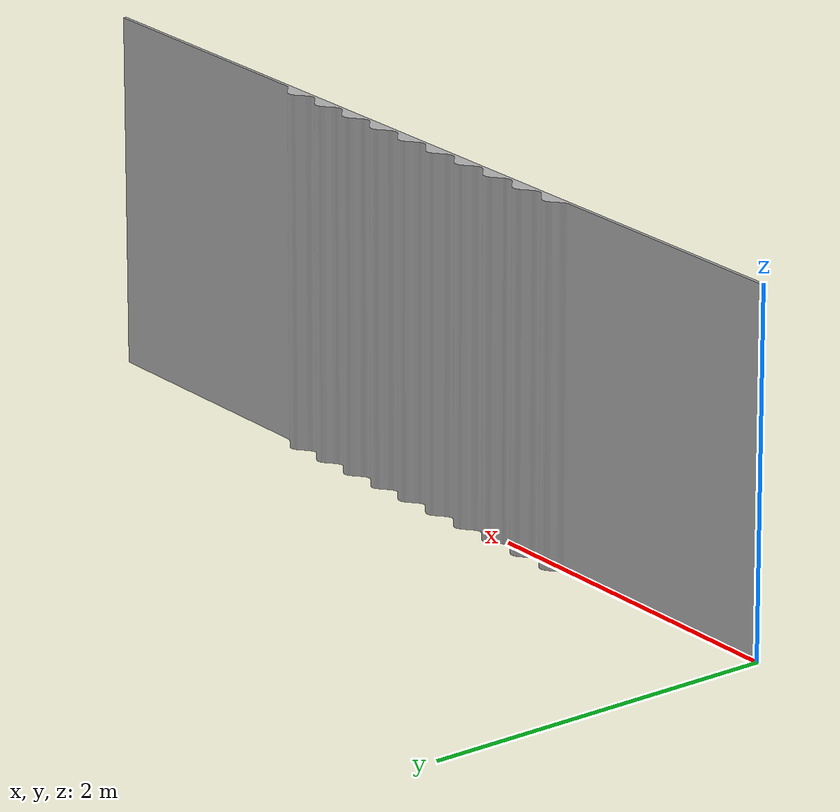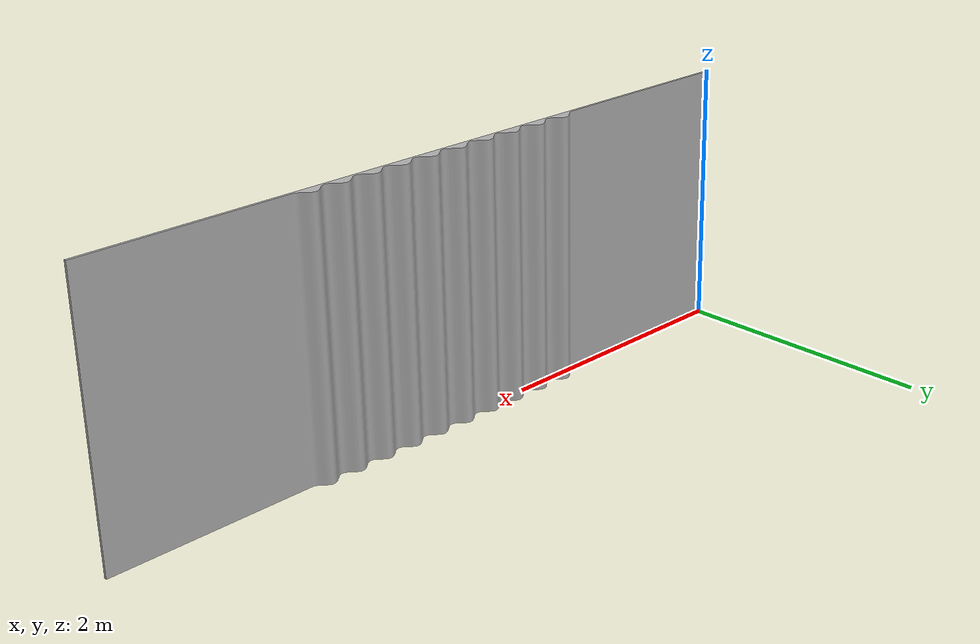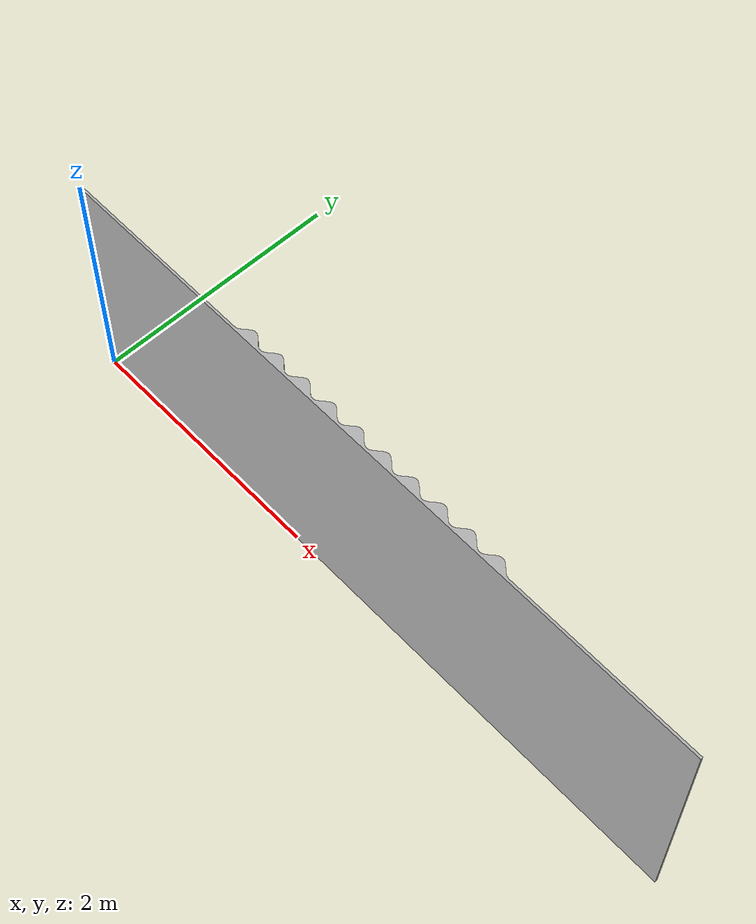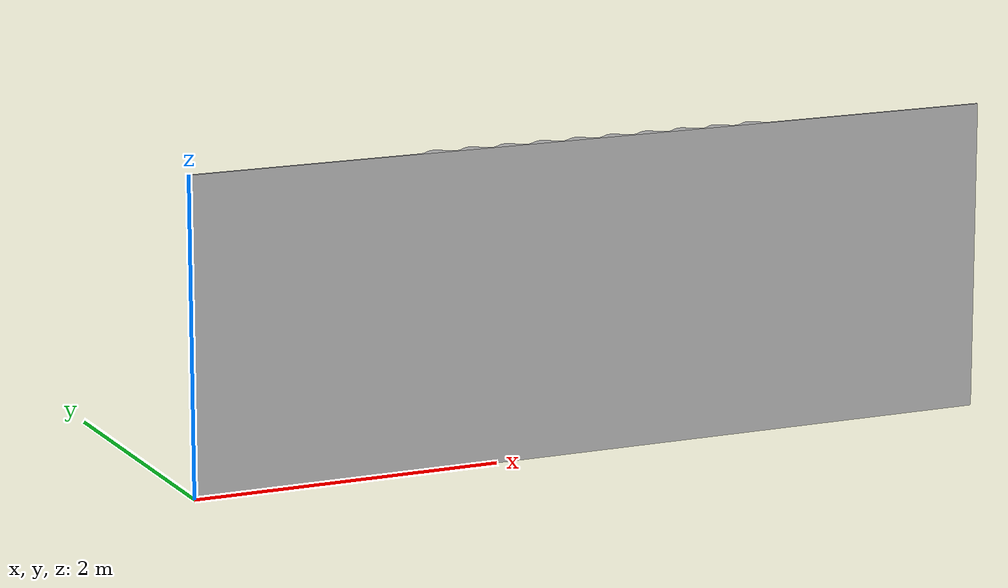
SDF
<?xml version='1.0'?>
<sdf version='1.6'>
  <model name='speed_bump'>
    <static>true</static>
    <link name='body'>
      <pose frame=''>0 0 0 0 0 0</pose>
      <self_collide>0</self_collide>
      <kinematic>0</kinematic>
      <gravity>1</gravity>
      <visual name='visual'>
        <geometry>
          <mesh>
            <uri>model://speed_bump/meshes/speed_bump.stl</uri>
            <scale>0.001 0.001 0.001</scale>
          </mesh>
        </geometry>
        <material>
          <ambient>0.3 0.3 0.3 1</ambient>
          <diffuse>0.7 0.7 0.7 1</diffuse>
          <specular>1 1 1 1</specular>
        </material>
      </visual>
      <collision name='collision'>
        <geometry>
          <mesh>
            <uri>model://speed_bump/meshes/speed_bump.stl</uri>
            <scale>0.001 0.001 0.001</scale>
          </mesh>
        </geometry>
      </collision>
    </link>
  </model>
</sdf>
